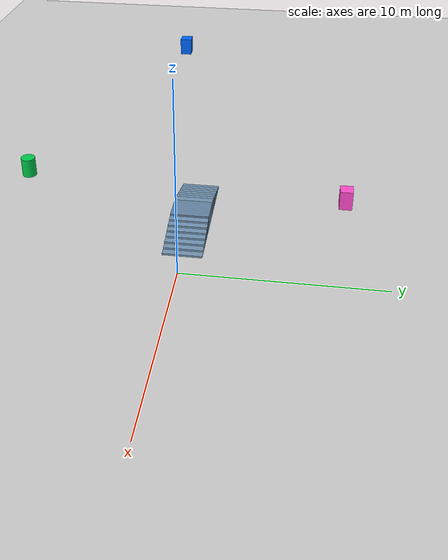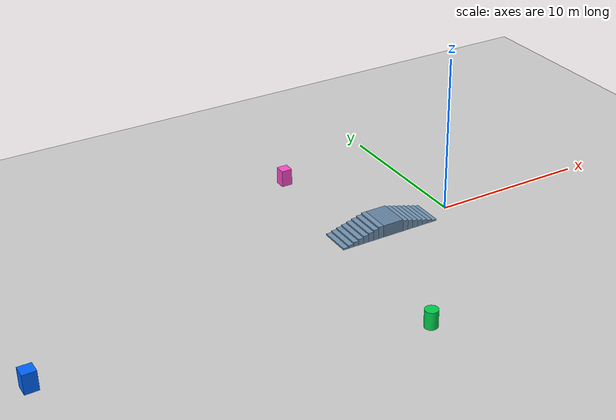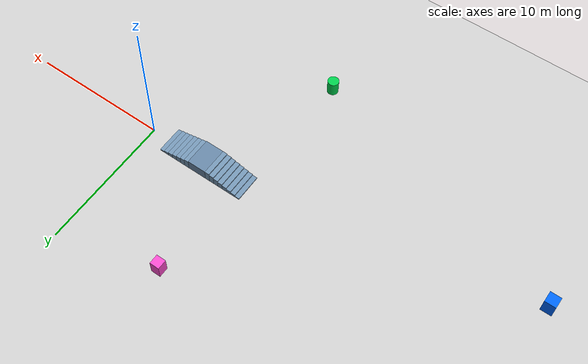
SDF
<sdf version="1.8">
 <world name="semantic_segmentation_world">
  <model name="ground_plane">
   <static>true</static>
   <link name="link">
    <collision name="collision">
     <geometry><plane><normal>0 0 1</normal><size>120 120</size></plane></geometry>
     <surface><friction><ode><mu>100</mu><mu2>50</mu2></ode></friction></surface>
    </collision>
    <visual name="visual">
     <geometry><plane><normal>0 0 1</normal><size>100 100</size></plane></geometry>
     <material>
      <ambient>0.8 0.8 0.8 1</ambient>
      <diffuse>0.8 0.8 0.8 1</diffuse>
      <specular>0.8 0.8 0.8 1</specular>
     </material>
    </visual>
   </link>
  </model>
  <model name="dynamic_obstacle_1">
   <static>true</static>
   <pose>-28 -4 0.6 0 0 0</pose>
   <link name="body">
    <inertial><mass>1</mass><inertia><ixx>0.12</ixx><iyy>0.12</iyy><izz>0.12</izz></inertia></inertial>
    <velocity_decay><linear>0.4</linear><angular>0.8</angular></velocity_decay>
    <collision name="collision">
     <geometry><box><size>0.8 0.8 1.2</size></box></geometry>
     <surface><friction><ode><mu>0.2</mu><mu2>0.2</mu2></ode></friction></surface>
    </collision>
    <visual name="visual">
     <geometry><box><size>0.8 0.8 1.2</size></box></geometry>
     <material><ambient>0 0.4 1 1</ambient><diffuse>0 0.4 1 1</diffuse></material>
    </visual>
   </link>
   <plugin filename="ignition-gazebo-label-system" name="ignition::gazebo::systems::Label">
    <label>6</label>
   </plugin>
   <plugin filename="libssmi_periodic_motion_system.so" name="semantic_segmentation_husky::PeriodicMotionSystem">
    <offset>10 0 0</offset>
    <period>30</period>
    <phase>7.5</phase>
   </plugin>
  </model>
  <model name="dynamic_obstacle_4">
   <static>true</static>
   <pose>-8 -10 0.55 0 0 0</pose>
   <link name="body">
    <inertial><mass>1</mass><inertia><ixx>0.1</ixx><iyy>0.1</iyy><izz>0.1</izz></inertia></inertial>
    <velocity_decay><linear>0.4</linear><angular>0.8</angular></velocity_decay>
    <collision name="collision">
     <geometry><cylinder><radius>0.4</radius><length>1.1</length></cylinder></geometry>
     <surface><friction><ode><mu>0.2</mu><mu2>0.2</mu2></ode></friction></surface>
    </collision>
    <visual name="visual">
     <geometry><cylinder><radius>0.4</radius><length>1.1</length></cylinder></geometry>
     <material><ambient>0 0.8 0.3 1</ambient><diffuse>0 0.8 0.3 1</diffuse></material>
    </visual>
   </link>
   <plugin filename="ignition-gazebo-label-system" name="ignition::gazebo::systems::Label">
    <label>6</label>
   </plugin>
   <plugin filename="libssmi_periodic_motion_system.so" name="semantic_segmentation_husky::PeriodicMotionSystem">
    <offset>16 0 0</offset>
    <period>48</period>
    <phase>12</phase>
   </plugin>
  </model>
  <model name="dynamic_obstacle_5">
   <static>true</static>
   <pose>-7 8 0.55 0 0 1.5708</pose>
   <link name="body">
    <inertial><mass>1</mass><inertia><ixx>0.1</ixx><iyy>0.1</iyy><izz>0.1</izz></inertia></inertial>
    <velocity_decay><linear>0.4</linear><angular>0.8</angular></velocity_decay>
    <collision name="collision">
     <geometry><box><size>0.7 0.7 1.1</size></box></geometry>
     <surface><friction><ode><mu>0.2</mu><mu2>0.2</mu2></ode></friction></surface>
    </collision>
    <visual name="visual">
     <geometry><box><size>0.7 0.7 1.1</size></box></geometry>
     <material><ambient>1 0.3 0.8 1</ambient><diffuse>1 0.3 0.8 1</diffuse></material>
    </visual>
   </link>
   <plugin filename="ignition-gazebo-label-system" name="ignition::gazebo::systems::Label">
    <label>6</label>
   </plugin>
   <plugin filename="libssmi_periodic_motion_system.so" name="semantic_segmentation_husky::PeriodicMotionSystem">
    <offset>0 12 0</offset>
    <period>36</period>
    <phase>9</phase>
   </plugin>
  </model>
  <model name="staircase">
   <static>true</static>
   <pose>-8 0 0 0 0 0</pose>
   <link name="stairs">
    <collision name="step_1_collision">
     <pose>0.175 0 0.05 0 0 0</pose>
     <geometry><box><size>0.35 2.0 0.10</size></box></geometry>
     <surface><friction><ode><mu>1.0</mu><mu2>1.0</mu2></ode></friction></surface>
    </collision>
    <visual name="step_1_visual">
     <pose>0.175 0 0.05 0 0 0</pose>
     <geometry><box><size>0.35 2.0 0.10</size></box></geometry>
     <material><ambient>0.35 0.45 0.55 1</ambient><diffuse>0.45 0.58 0.70 1</diffuse></material>
    </visual>
    <collision name="step_2_collision">
     <pose>0.525 0 0.10 0 0 0</pose>
     <geometry><box><size>0.35 2.0 0.20</size></box></geometry>
     <surface><friction><ode><mu>1.0</mu><mu2>1.0</mu2></ode></friction></surface>
    </collision>
    <visual name="step_2_visual">
     <pose>0.525 0 0.10 0 0 0</pose>
     <geometry><box><size>0.35 2.0 0.20</size></box></geometry>
     <material><ambient>0.35 0.45 0.55 1</ambient><diffuse>0.45 0.58 0.70 1</diffuse></material>
    </visual>
    <collision name="step_3_collision">
     <pose>0.875 0 0.15 0 0 0</pose>
     <geometry><box><size>0.35 2.0 0.30</size></box></geometry>
     <surface><friction><ode><mu>1.0</mu><mu2>1.0</mu2></ode></friction></surface>
    </collision>
    <visual name="step_3_visual">
     <pose>0.875 0 0.15 0 0 0</pose>
     <geometry><box><size>0.35 2.0 0.30</size></box></geometry>
     <material><ambient>0.35 0.45 0.55 1</ambient><diffuse>0.45 0.58 0.70 1</diffuse></material>
    </visual>
    <collision name="step_4_collision">
     <pose>1.225 0 0.20 0 0 0</pose>
     <geometry><box><size>0.35 2.0 0.40</size></box></geometry>
     <surface><friction><ode><mu>1.0</mu><mu2>1.0</mu2></ode></friction></surface>
    </collision>
    <visual name="step_4_visual">
     <pose>1.225 0 0.20 0 0 0</pose>
     <geometry><box><size>0.35 2.0 0.40</size></box></geometry>
     <material><ambient>0.35 0.45 0.55 1</ambient><diffuse>0.45 0.58 0.70 1</diffuse></material>
    </visual>
    <collision name="step_5_collision">
     <pose>1.575 0 0.25 0 0 0</pose>
     <geometry><box><size>0.35 2.0 0.50</size></box></geometry>
     <surface><friction><ode><mu>1.0</mu><mu2>1.0</mu2></ode></friction></surface>
    </collision>
    <visual name="step_5_visual">
     <pose>1.575 0 0.25 0 0 0</pose>
     <geometry><box><size>0.35 2.0 0.50</size></box></geometry>
     <material><ambient>0.35 0.45 0.55 1</ambient><diffuse>0.45 0.58 0.70 1</diffuse></material>
    </visual>
    <collision name="step_6_collision">
     <pose>1.925 0 0.30 0 0 0</pose>
     <geometry><box><size>0.35 2.0 0.60</size></box></geometry>
     <surface><friction><ode><mu>1.0</mu><mu2>1.0</mu2></ode></friction></surface>
    </collision>
    <visual name="step_6_visual">
     <pose>1.925 0 0.30 0 0 0</pose>
     <geometry><box><size>0.35 2.0 0.60</size></box></geometry>
     <material><ambient>0.35 0.45 0.55 1</ambient><diffuse>0.45 0.58 0.70 1</diffuse></material>
    </visual>
    <collision name="step_7_collision">
     <pose>2.275 0 0.35 0 0 0</pose>
     <geometry><box><size>0.35 2.0 0.70</size></box></geometry>
     <surface><friction><ode><mu>1.0</mu><mu2>1.0</mu2></ode></friction></surface>
    </collision>
    <visual name="step_7_visual">
     <pose>2.275 0 0.35 0 0 0</pose>
     <geometry><box><size>0.35 2.0 0.70</size></box></geometry>
     <material><ambient>0.35 0.45 0.55 1</ambient><diffuse>0.45 0.58 0.70 1</diffuse></material>
    </visual>
    <collision name="step_8_collision">
     <pose>2.625 0 0.40 0 0 0</pose>
     <geometry><box><size>0.35 2.0 0.80</size></box></geometry>
     <surface><friction><ode><mu>1.0</mu><mu2>1.0</mu2></ode></friction></surface>
    </collision>
    <visual name="step_8_visual">
     <pose>2.625 0 0.40 0 0 0</pose>
     <geometry><box><size>0.35 2.0 0.80</size></box></geometry>
     <material><ambient>0.35 0.45 0.55 1</ambient><diffuse>0.45 0.58 0.70 1</diffuse></material>
    </visual>
    <collision name="top_platform_collision">
     <pose>3.50 0 0.40 0 0 0</pose>
     <geometry><box><size>1.40 2.0 0.80</size></box></geometry>
     <surface><friction><ode><mu>1.0</mu><mu2>1.0</mu2></ode></friction></surface>
    </collision>
    <visual name="top_platform_visual">
     <pose>3.50 0 0.40 0 0 0</pose>
     <geometry><box><size>1.40 2.0 0.80</size></box></geometry>
     <material><ambient>0.30 0.40 0.50 1</ambient><diffuse>0.40 0.52 0.64 1</diffuse></material>
    </visual>
    <collision name="down_step_1_collision">
     <pose>4.375 0 0.35 0 0 0</pose>
     <geometry><box><size>0.35 2.0 0.70</size></box></geometry>
     <surface><friction><ode><mu>1.0</mu><mu2>1.0</mu2></ode></friction></surface>
    </collision>
    <visual name="down_step_1_visual">
     <pose>4.375 0 0.35 0 0 0</pose>
     <geometry><box><size>0.35 2.0 0.70</size></box></geometry>
     <material><ambient>0.35 0.45 0.55 1</ambient><diffuse>0.45 0.58 0.70 1</diffuse></material>
    </visual>
    <collision name="down_step_2_collision">
     <pose>4.725 0 0.30 0 0 0</pose>
     <geometry><box><size>0.35 2.0 0.60</size></box></geometry>
     <surface><friction><ode><mu>1.0</mu><mu2>1.0</mu2></ode></friction></surface>
    </collision>
    <visual name="down_step_2_visual">
     <pose>4.725 0 0.30 0 0 0</pose>
     <geometry><box><size>0.35 2.0 0.60</size></box></geometry>
     <material><ambient>0.35 0.45 0.55 1</ambient><diffuse>0.45 0.58 0.70 1</diffuse></material>
    </visual>
    <collision name="down_step_3_collision">
     <pose>5.075 0 0.25 0 0 0</pose>
     <geometry><box><size>0.35 2.0 0.50</size></box></geometry>
     <surface><friction><ode><mu>1.0</mu><mu2>1.0</mu2></ode></friction></surface>
    </collision>
    <visual name="down_step_3_visual">
     <pose>5.075 0 0.25 0 0 0</pose>
     <geometry><box><size>0.35 2.0 0.50</size></box></geometry>
     <material><ambient>0.35 0.45 0.55 1</ambient><diffuse>0.45 0.58 0.70 1</diffuse></material>
    </visual>
    <collision name="down_step_4_collision">
     <pose>5.425 0 0.20 0 0 0</pose>
     <geometry><box><size>0.35 2.0 0.40</size></box></geometry>
     <surface><friction><ode><mu>1.0</mu><mu2>1.0</mu2></ode></friction></surface>
    </collision>
    <visual name="down_step_4_visual">
     <pose>5.425 0 0.20 0 0 0</pose>
     <geometry><box><size>0.35 2.0 0.40</size></box></geometry>
     <material><ambient>0.35 0.45 0.55 1</ambient><diffuse>0.45 0.58 0.70 1</diffuse></material>
    </visual>
    <collision name="down_step_5_collision">
     <pose>5.775 0 0.15 0 0 0</pose>
     <geometry><box><size>0.35 2.0 0.30</size></box></geometry>
     <surface><friction><ode><mu>1.0</mu><mu2>1.0</mu2></ode></friction></surface>
    </collision>
    <visual name="down_step_5_visual">
     <pose>5.775 0 0.15 0 0 0</pose>
     <geometry><box><size>0.35 2.0 0.30</size></box></geometry>
     <material><ambient>0.35 0.45 0.55 1</ambient><diffuse>0.45 0.58 0.70 1</diffuse></material>
    </visual>
    <collision name="down_step_6_collision">
     <pose>6.125 0 0.10 0 0 0</pose>
     <geometry><box><size>0.35 2.0 0.20</size></box></geometry>
     <surface><friction><ode><mu>1.0</mu><mu2>1.0</mu2></ode></friction></surface>
    </collision>
    <visual name="down_step_6_visual">
     <pose>6.125 0 0.10 0 0 0</pose>
     <geometry><box><size>0.35 2.0 0.20</size></box></geometry>
     <material><ambient>0.35 0.45 0.55 1</ambient><diffuse>0.45 0.58 0.70 1</diffuse></material>
    </visual>
    <collision name="down_step_7_collision">
     <pose>6.475 0 0.05 0 0 0</pose>
     <geometry><box><size>0.35 2.0 0.10</size></box></geometry>
     <surface><friction><ode><mu>1.0</mu><mu2>1.0</mu2></ode></friction></surface>
    </collision>
    <visual name="down_step_7_visual">
     <pose>6.475 0 0.05 0 0 0</pose>
     <geometry><box><size>0.35 2.0 0.10</size></box></geometry>
     <material><ambient>0.35 0.45 0.55 1</ambient><diffuse>0.45 0.58 0.70 1</diffuse></material>
    </visual>
   </link>
   <plugin filename="ignition-gazebo-label-system" name="ignition::gazebo::systems::Label">
    <label>7</label>
   </plugin>
  </model>
 </world>
</sdf>
